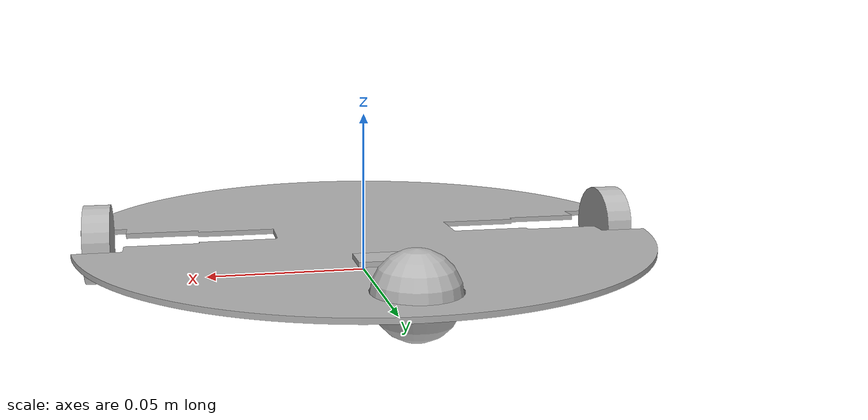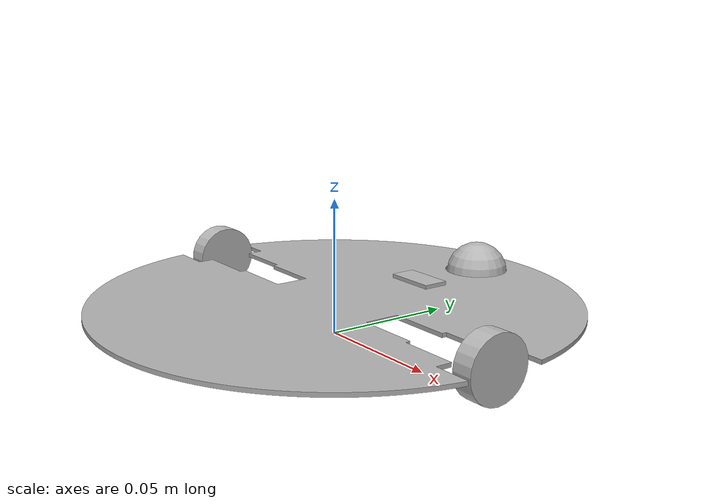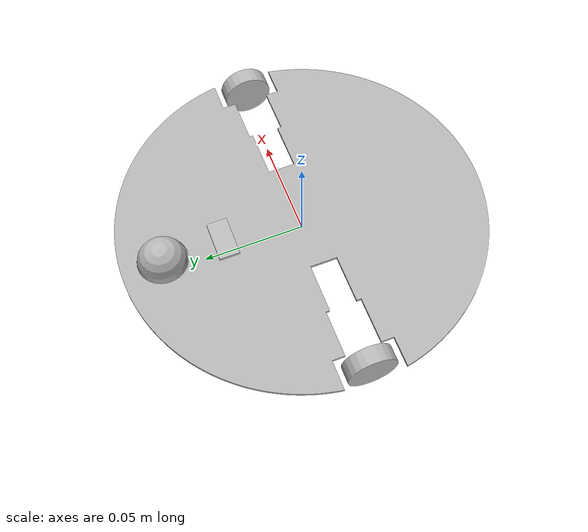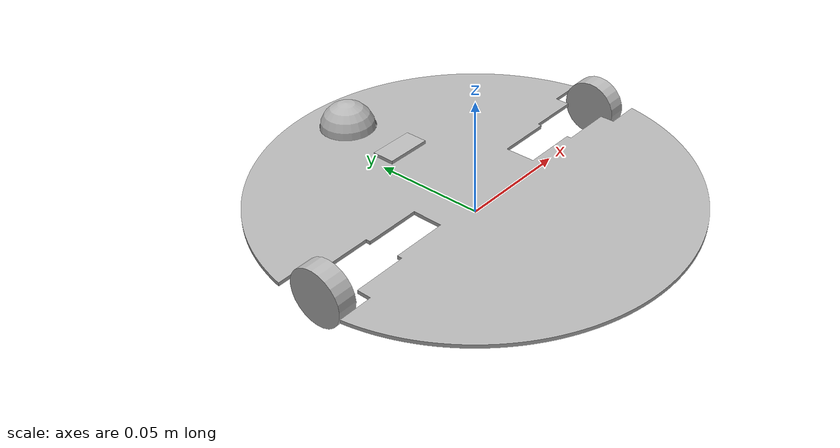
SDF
<?xml version='1.0'?>
<sdf version='1.4'>
  <model name="robi">
	<static>false</static>

	<link name="chassis">
		<pose>0 0 .012 0 0 0</pose>
		<inertial>
			<pose>0 0.001 0 0 0 0</pose>
      			<inertia>
				<ixx>0.143414</ixx>
        			<iyy>0.115030</iyy>
        			<izz>0.258336</izz>
				<ixy>-0.0000657706</ixy>
				<ixz>0.00000019534</ixz>
				<iyz>0.00000072647</iyz>
      			</inertia>
      			<mass>64.32</mass>
		</inertial>
		<collision name='collision'>
              		<geometry>
                		<cylinder>
                  			<radius>0.09</radius>
					<length>0.002</length>
                		</cylinder>
              		</geometry>
            	</collision>

            	<visual name='visual'>
			<pose>0 0 0.001 0 0 0</pose>
              		<geometry>
                		<mesh>
					<uri>model://gazebo-robi/meshes/robi_base2.dae</uri>
     				</mesh>
              		</geometry>
            	</visual>

		<collision name='caster_collision'>
			<pose>0 0.07 0 0 0 0</pose>
			<geometry>
                		<sphere>
                			<radius>.012</radius>
              			</sphere>
            		</geometry>

            		<surface>
              			<friction>
                			<ode>
                  				<mu>0</mu>
                  				<mu2>0</mu2>
                  				<slip1>1.0</slip1>
                  				<slip2>1.0</slip2>
                			</ode>
              			</friction>
            		</surface>
          	</collision>

		<inertial>
      			<inertia>
					<ixx>0.001163213</ixx>
					<iyy>0.001163213</iyy>
					<izz>0.001163213</izz>
					<ixy>0</ixy>
					<ixz>0</ixz>
					<iyz>0</iyz>
      			</inertia>
      			<mass>20.19466</mass>
		</inertial>

          	<visual name='caster_visual'>
            		<pose>0 0.07 0 0 0 0</pose>

            		<geometry>
              			<sphere>
                			<radius>.012</radius>
              			</sphere>
            		</geometry>
          	</visual>

		<collision name='battery_collision'>
            		<pose>0 0.04 0 0 0 0</pose>
				<geometry>
                			<box>
                				<size>.02 .01 .005</size>
              				</box>
            			</geometry>
          		</collision>

		<inertial>
	      		<inertia>
				<ixx>0.001163213</ixx>
				<iyy>0.001163213</iyy>
				<izz>0.001163213</izz>
				<ixy>0</ixy>
				<ixz>0</ixz>
				<iyz>0</iyz>
	      		</inertia>
	      		<mass>20.19466</mass>
		</inertial>

		<visual name='battery_visual'>
            		<pose>0 0.04 0 0 0 0</pose>

            		<geometry>
              			<box>
                			<size>.02 .01 .005</size>
              			</box>
            		</geometry>
          	</visual>
	</link>

	  <link name="left_wheel">
        	<pose>0.082 0 0.012 0 1.5707 0</pose>
		<inertial>
			<pose>0 0 0 0 0 0</pose>
			<mass>10.097</mass>
      			<inertia>
        			<ixx>0.000578914</ixx>
        			<iyy>0.000578914</iyy>
        			<izz>0.000727008</izz>
				<ixy>0</ixy>
				<ixz>0</ixz>
				<iyz>0</iyz>
      			</inertia>
		</inertial>
        	<collision name="collision">
         		<geometry>
            			<cylinder>
              				<radius>.012</radius>
              				<length>.008</length>
            			</cylinder>
          		</geometry>
			<surface>
				<friction>
				  <ode><mu>100000.0</mu><mu2>100000.0</mu2></ode>
				</friction>
			</surface>
        	</collision>
        	<visual name="visual">
        		<geometry>
            			<cylinder>
              				<radius>.012</radius>
              				<length>.008</length>
            			</cylinder>
          		</geometry>
        	</visual>
     	  </link>
	  <link name="right_wheel">
        	<pose>-0.082 0 0.012 0 1.5707 0</pose>
		<inertial>
			<pose>0 0 0 0 0 0</pose>
			<mass>10.097</mass>
      			<inertia>
        			<ixx>0.000578914</ixx>
        			<iyy>0.000578914</iyy>
        			<izz>0.000727008</izz>
				<ixy>0</ixy>
				<ixz>0</ixz>
				<iyz>0</iyz>
      			</inertia>
		</inertial>
        	<collision name="collision">
         		<geometry>
            			<cylinder>
              				<radius>.012</radius>
              				<length>.008</length>
            			</cylinder>
          		</geometry>
			<surface>
				<friction>
				  <ode><mu>100000.0</mu><mu2>100000.0</mu2></ode>
				</friction>
			</surface>
        	</collision>
        	<visual name="visual">
        		<geometry>
            			<cylinder>
              				<radius>.012</radius>
              				<length>.008</length>
            			</cylinder>
          		</geometry>
        	</visual>
     	  </link>

	<joint type="revolute" name="left_wheel_hinge">
        	<pose>0 0 0.012 0 0 0</pose>
        	<child>left_wheel</child>
        	<parent>chassis</parent>
        	<axis>
          		<xyz>1 0 0</xyz>
			<limit>
				<lower>-10000000000000000</lower>
      				<upper>10000000000000000</upper>
    			</limit>
        	</axis>
      	</joint>

      	<joint type="revolute" name="right_wheel_hinge">
        	<pose>0 0 0.012 0 0 0</pose>
        	<child>right_wheel</child>
        	<parent>chassis</parent>
        	<axis>
          		<xyz>1 0 0</xyz>
 			<limit>
				<lower>-10000000000000000</lower>
      				<upper>10000000000000000</upper>
    			</limit>
        	</axis>
      	</joint>

  </model>
</sdf>
